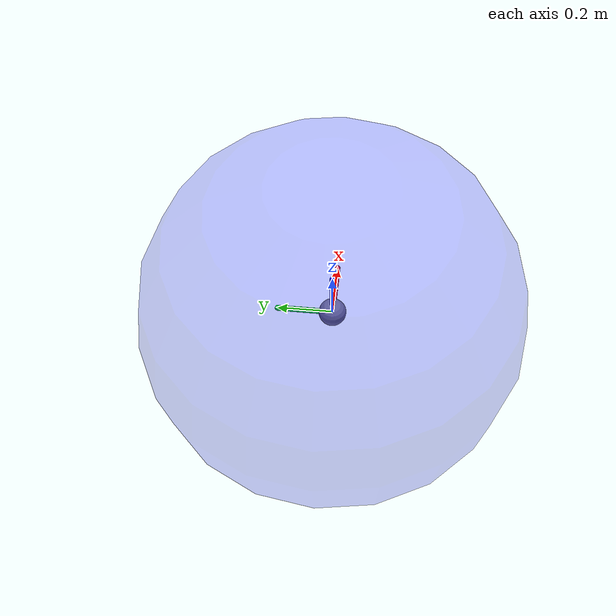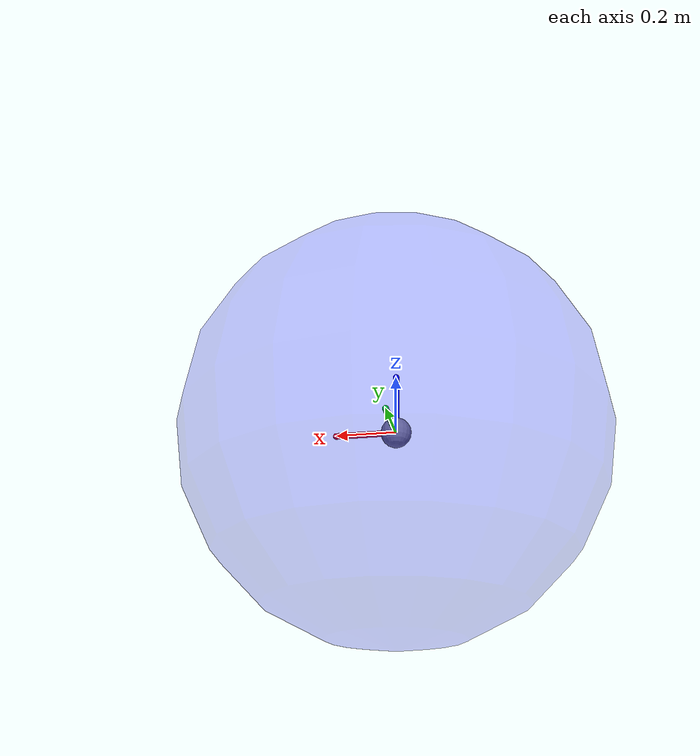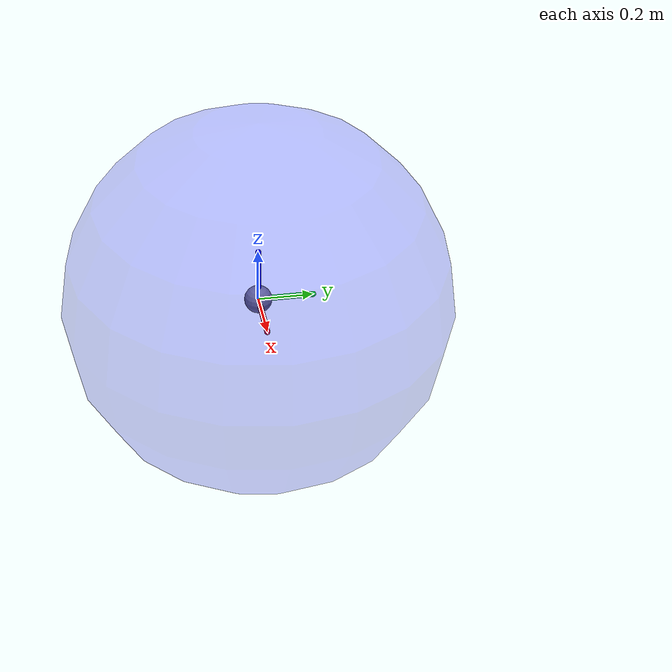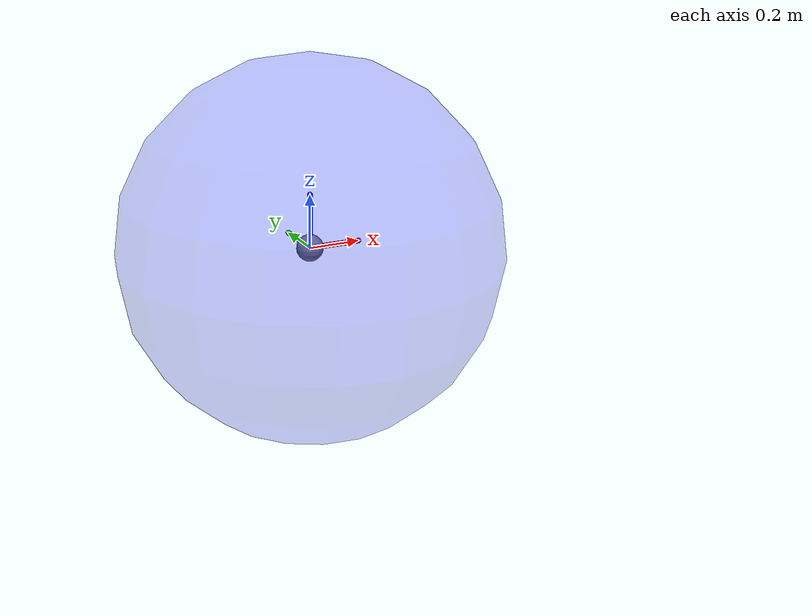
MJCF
<mujoco model="spacecraft_nd">
  <compiler angle="radian" inertiafromgeom="false"/>
  <option timestep="1e-3" gravity="0 0 0" integrator="implicit"/>
  <default>
    <joint armature="0.0" damping="0.0" stiffness="0"/>
    <geom contype="0" conaffinity="0" friction="0 0 0" rgba="0.8 0.6 0.4 1"/>
    <motor ctrllimited="true" ctrlrange="-100 100"/>
  </default>
  <worldbody>
    <body name="spacecraft">
      <freejoint name="base6dof"/>
      <geom type="cylinder" size="0.001 0.0015" rgba="0.5 0.5 0.5 1"/>
      <inertial pos="0 0 0" mass="1" diaginertia="1 1 1"/>
      <site name="spacecraft_com" pos="0 0 0" size="0.05" xyaxes="1 0 0 0 1 0"/>
      <geom name="spacecraft_axis_x" type="capsule" fromto="0 0 0  0.2 0 0" size="0.01" rgba="1 0 0 1"/>
      <geom name="spacecraft_axis_y" type="capsule" fromto="0 0 0  0 0.2 0" size="0.01" rgba="0 1 0 1"/>
      <geom name="spacecraft_axis_z" type="capsule" fromto="0 0 0  0 0 0.2" size="0.01" rgba="0 0 1 1"/>
    </body>
    <body name="earth" pos="0 0 0">
      <geom type="sphere" size="0.7" rgba="0 0 1 0.25" contype="0" conaffinity="0" friction="0 0 0" density="0"/>
      <geom name="earth_axis_x" type="capsule" fromto="0 0 0  0.2 0 0" size="0.01" rgba="1 0 0 1"/>
      <geom name="earth_axis_y" type="capsule" fromto="0 0 0  0 0.2 0" size="0.01" rgba="0 1 0 1"/>
      <geom name="earth_axis_z" type="capsule" fromto="0 0 0  0 0 0.2" size="0.01" rgba="0 0 1 1"/>
    </body>
    <light name="light1" pos="0 0 5" dir="0 0 -1" diffuse="1 1 1" specular="0.3 0.3 0.3" ambient="0.1 0.1 0.1"/>
    <camera name="fixed_camera" pos="-150 -150 -150" quat="1 0 0 0" fovy="45"/>
  </worldbody>
  <actuator>
    <motor name="F_world_x" joint="base6dof" gear="1 0 0 0 0 0"/>
    <motor name="F_world_y" joint="base6dof" gear="0 1 0 0 0 0"/>
    <motor name="F_world_z" joint="base6dof" gear="0 0 1 0 0 0"/>
    <motor name="M_body_x" joint="base6dof" gear="0 0 0 1 0 0"/>
    <motor name="M_body_y" joint="base6dof" gear="0 0 0 0 1 0"/>
    <motor name="M_body_z" joint="base6dof" gear="0 0 0 0 0 1"/>
  </actuator>
</mujoco>
